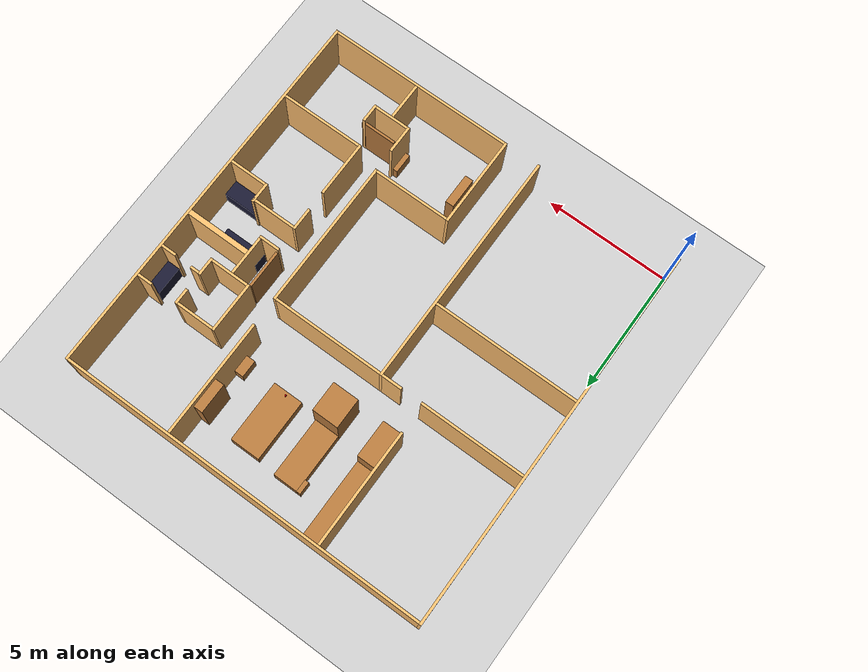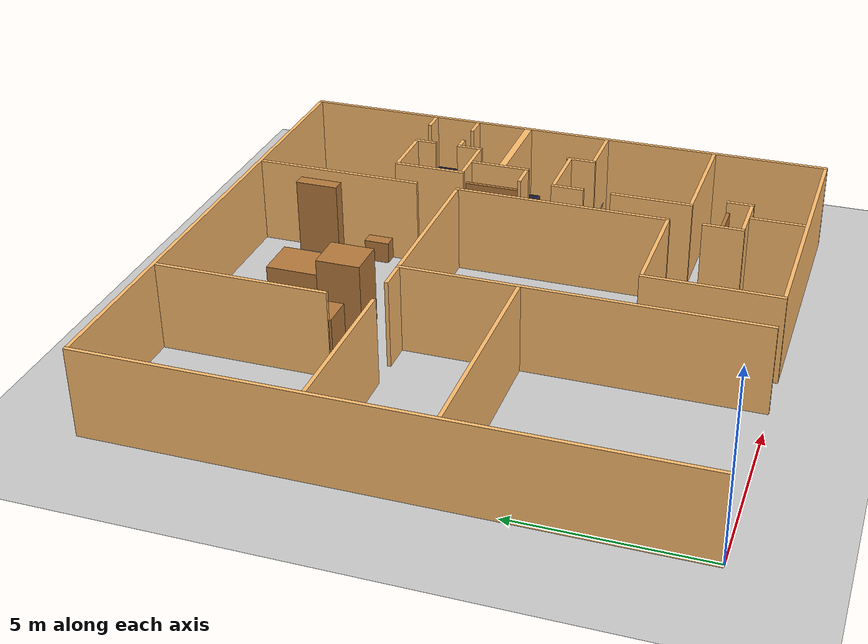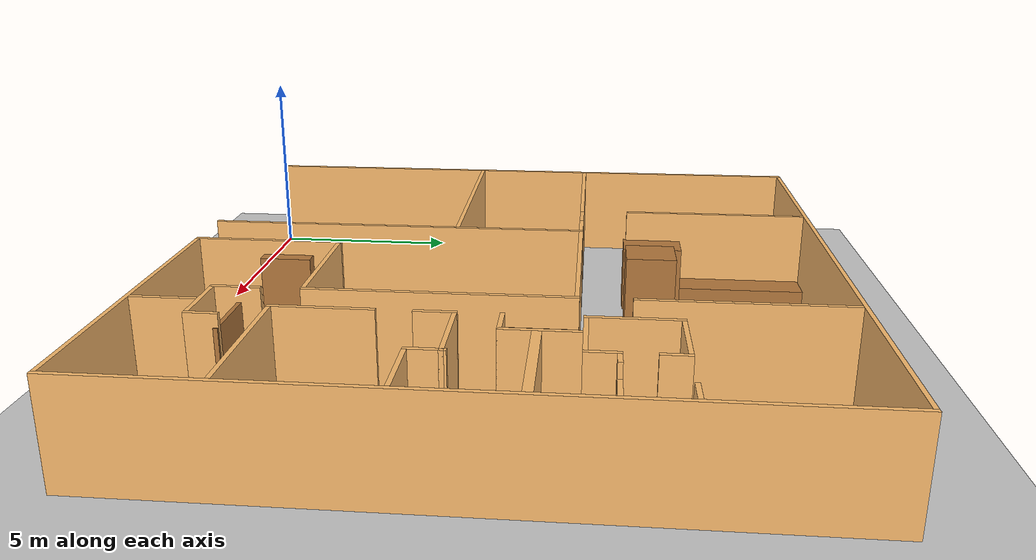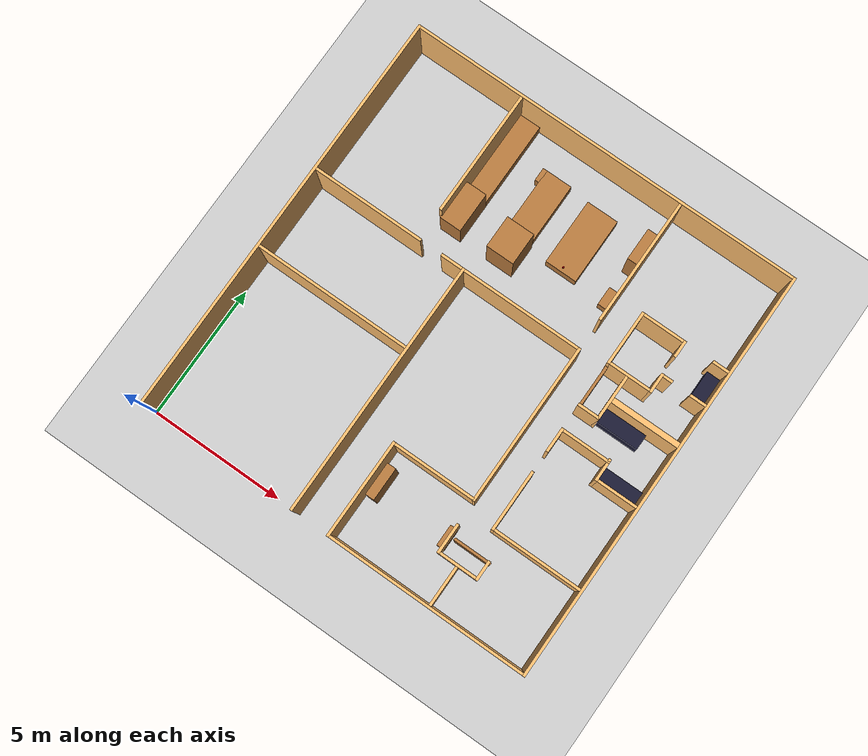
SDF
<?xml version="1.0" ?>
<sdf version="1.8">
  <world name="can_challenge">
    <physics name="1ms" type="ignored">
      <max_step_size>0.001</max_step_size>
      <real_time_factor>1.0</real_time_factor>
    </physics>
    <plugin filename="gz-sim-physics-system" name="gz::sim::systems::Physics">
    </plugin>
    <plugin filename="gz-sim-user-commands-system" name="gz::sim::systems::UserCommands">
    </plugin>
    <plugin filename="gz-sim-scene-broadcaster-system" name="gz::sim::systems::SceneBroadcaster">
    </plugin>
    <plugin filename="gz-sim-sensors-system" name="gz::sim::systems::Sensors">
      <render_engine>ogre2</render_engine>
    </plugin>

    <light type="directional" name="sun">
      <cast_shadows>true</cast_shadows>
      <pose>0 0 10 0 0 0</pose>
      <diffuse>0.8 0.8 0.8 1</diffuse>
      <specular>0.2 0.2 0.2 1</specular>
      <attenuation>
        <range>1000</range>
        <constant>0.9</constant>
        <linear>0.01</linear>
        <quadratic>0.001</quadratic>
      </attenuation>
      <direction>-0.5 0.1 -0.9</direction>
    </light>

    <model name="ground_plane">
      <static>true</static>
      <link name="link">
        <collision name="collision">
          <geometry>
            <plane>
              <normal>0 0 1</normal>
            </plane>
          </geometry>
        </collision>
        <visual name="visual">
          <geometry>
            <plane>
              <normal>0 0 1</normal>
              <size>100 100</size>
            </plane>
          </geometry>
          <material>
            <ambient>0.8 0.8 0.8 1</ambient>
            <diffuse>0.8 0.8 0.8 1</diffuse>
            <specular>0.8 0.8 0.8 1</specular>
          </material>
        </visual>
      </link>
    </model>

    <model name="robot_home">
      <static>true</static>
      <link name="kitchen_lower_cabinet">
        <pose> 4.5298 13.7 0.3048 0 0 0</pose>
        <visual name="visual">
          <geometry>
            <box>
              <size>0.83 3.2 0.6096</size>
            </box>
          </geometry>
           <material>
            <ambient>0.45 0.3 0.15 1</ambient>
            <diffuse>0.72 0.48 0.24 1</diffuse>
            <specular>0.15 0.15 0.15 1</specular>
            <emissive>0 0 0 1</emissive>
            <shininess>30</shininess>
          </material>
        </visual>
        <collision name="collision">
          <geometry>
            <box>
              <size>0.83 3.2 0.6096</size>
            </box>
          </geometry>
        </collision>
      </link>

      <link name="kitchen_pantry">
        <pose> 4.5298 11.35 0.6 0 0 0</pose>
        <visual name="visual">
          <geometry>
            <box>
              <size>0.83 1.5 2.13</size>
            </box>
          </geometry>
           <material>
            <ambient>0.45 0.3 0.15 1</ambient>
            <diffuse>0.72 0.48 0.24 1</diffuse>
            <specular>0.15 0.15 0.15 1</specular>
            <emissive>0 0 0 1</emissive>
            <shininess>30</shininess>
          </material>
        </visual>
        <collision name="collision">
          <geometry>
            <box>
              <size>0.83 1.5 2.13</size>
            </box>
          </geometry>
        </collision>
      </link>

      <link name="refrigerator">
        <pose> 6.525 11.2 1.065 0 0 0</pose>
        <visual name="visual">
          <geometry>
            <box>
              <size>1.05 1.2 2.13</size>
            </box>
          </geometry>
           <material>
            <ambient>0.45 0.3 0.15 1</ambient>
            <diffuse>0.72 0.48 0.24 1</diffuse>
            <specular>0.15 0.15 0.15 1</specular>
            <emissive>0 0 0 1</emissive>
            <shininess>30</shininess>
          </material>
        </visual>
        <collision name="collision">
          <geometry>
            <box>
              <size>1.05 1.2 2.13</size>
            </box>
          </geometry>
        </collision>
      </link>

      <link name="peninsula">
        <pose> 6.5 13.0 0.3048 0 0 0</pose>
        <visual name="visual">
          <geometry>
            <box>
              <size>1.0 2.4 0.6096</size>
            </box>
          </geometry>
           <material>
            <ambient>0.45 0.3 0.15 1</ambient>
            <diffuse>0.72 0.48 0.24 1</diffuse>
            <specular>0.15 0.15 0.15 1</specular>
            <emissive>0 0 0 1</emissive>
            <shininess>30</shininess>
          </material>
        </visual>
        <collision name="collision">
          <geometry>
            <box>
              <size>1.05 2.4 0.6096</size>
            </box>
          </geometry>
        </collision>
      </link>

      <link name="garbage_can">
        <pose> 5.935 13.95 0.3048 0 0 0</pose>
        <visual name="visual">
          <geometry>
            <box>
              <size>0.17 0.5 0.6096</size>
            </box>
          </geometry>
           <material>
            <ambient>0.45 0.3 0.15 1</ambient>
            <diffuse>0.72 0.48 0.24 1</diffuse>
            <specular>0.15 0.15 0.15 1</specular>
            <emissive>0 0 0 1</emissive>
            <shininess>30</shininess>
          </material>
        </visual>
        <collision name="collision">
          <geometry>
            <box>
              <size>0.17 0.5 0.6096</size>
            </box>
          </geometry>
        </collision>
      </link>

      <link name="kitchen_table">
        <pose> 8.355 12.85 0.3048 0 0 0</pose>
        <visual name="visual">
          <geometry>
            <box>
              <size>1.21 2.5 0.6096</size>
            </box>
          </geometry>
           <material>
            <ambient>0.45 0.3 0.15 1</ambient>
            <diffuse>0.72 0.48 0.24 1</diffuse>
            <specular>0.15 0.15 0.15 1</specular>
            <emissive>0 0 0 1</emissive>
            <shininess>30</shininess>
          </material>
        </visual>
        <collision name="collision">
          <geometry>
            <box>
              <size>1.21 2.5 0.6096</size>
            </box>
          </geometry>
        </collision>
      </link>

      <link name="ikea_pantry">
        <pose>10.2  13.5 1.065 0 0 0</pose>
        <visual name="visual">
          <geometry>
            <box>
              <size>0.4 1.2 2.13</size>
            </box>
          </geometry>
           <material>
            <ambient>0.45 0.3 0.15 1</ambient>
            <diffuse>0.72 0.48 0.24 1</diffuse>
            <specular>0.15 0.15 0.15 1</specular>
            <emissive>0 0 0 1</emissive>
            <shininess>30</shininess>
          </material>
        </visual>
        <collision name="collision">
          <geometry>
            <box>
              <size>0.4 1.2 2.13</size>
            </box>
          </geometry>
        </collision>
      </link>

      <link name="ikea_boxes">
        <pose> 10.2 11.75 0.3048 0 0 0</pose>
        <visual name="visual">
          <geometry>
            <box>
              <size>0.4 0.7 0.6096</size>
            </box>
          </geometry>
           <material>
            <ambient>0.45 0.3 0.15 1</ambient>
            <diffuse>0.72 0.48 0.24 1</diffuse>
            <specular>0.15 0.15 0.15 1</specular>
            <emissive>0 0 0 1</emissive>
            <shininess>30</shininess>
          </material>
        </visual>
        <collision name="collision">
          <geometry>
            <box>
              <size>0.4 0.7 0.6096</size>
            </box>
          </geometry>
        </collision>
      </link>

      <link name="hall_storage_door_east">
        <pose> 11.45 8.81 1.065 0 0 0</pose>
        <visual name="visual">
          <geometry>
            <box>
              <size>0.1 1.52 2.13</size>
            </box>
          </geometry>
           <material>
            <ambient>0.45 0.3 0.15 1</ambient>
            <diffuse>0.72 0.48 0.24 1</diffuse>
            <specular>0.15 0.15 0.15 1</specular>
            <emissive>0 0 0 1</emissive>
            <shininess>30</shininess>
          </material>
        </visual>
        <collision name="collision">
          <geometry>
            <box>
              <size>0.1 1.52 2.13</size>
            </box>
          </geometry>
        </collision>
      </link>

      <link name="computer_bookcase_north">
        <pose>7.635 2.38 1.065 0 0 0</pose>
        <visual name="visual">
          <geometry>
            <box>
              <size>0.33 1.22 2.13</size>
            </box>
          </geometry>
           <material>
            <ambient>0.45 0.3 0.15 1</ambient>
            <diffuse>0.72 0.48 0.24 1</diffuse>
            <specular>0.15 0.15 0.15 1</specular>
            <emissive>0 0 0 1</emissive>
            <shininess>30</shininess>
          </material>
        </visual>
        <collision name="collision">
          <geometry>
            <box>
              <size>0.33 1.22 2.13</size>
            </box>
          </geometry>
        </collision>
      </link>

      <link name="computer_table_south">
        <pose> 10.35 2.18 0.3048 0 0 0</pose>
        <visual name="visual">
          <geometry>
            <box>
              <size>0.3 0.8 0.6096</size>
            </box>
          </geometry>
           <material>
            <ambient>0.45 0.3 0.15 1</ambient>
            <diffuse>0.72 0.48 0.24 1</diffuse>
            <specular>0.15 0.15 0.15 1</specular>
            <emissive>0 0 0 1</emissive>
            <shininess>30</shininess>
          </material>
        </visual>
        <collision name="collision">
          <geometry>
            <box>
              <size>0.3 0.8 0.6096</size>
            </box>
          </geometry>
        </collision>
      </link>

      <link name="hall_storage_door_west">
        <pose> 11.3 2.25 1.065 0 0 0</pose>
        <visual name="visual">
          <geometry>
            <box>
              <size>1.4 0.1 2.13</size>
            </box>
          </geometry>
           <material>
            <ambient>0.45 0.3 0.15 1</ambient>
            <diffuse>0.72 0.48 0.24 1</diffuse>
            <specular>0.15 0.15 0.15 1</specular>
            <emissive>0 0 0 1</emissive>
            <shininess>30</shininess>
          </material>
        </visual>
        <collision name="collision">
          <geometry>
            <box>
              <size>1.55 0.1 2.13</size>
            </box>
          </geometry>
        </collision>
      </link>

      <link name="north_wall">
        <pose> -0.0508 7.7089 1.2191999999999998 0 0 0</pose>
        <visual name="visual">
          <geometry>
            <box>
              <size>0.1016 15.4178 2.4383999999999997</size>
            </box>
          </geometry>
          <material>
            <ambient>1.0 0.7451 0.4353 1</ambient>
            <diffuse>1.0 0.7451 0.4353 1</diffuse>
            <specular>1 1 1 1</specular>
          </material>
        </visual>
        <collision name="collision">
          <geometry>
            <box>
              <size>0.1016 15.4178 2.4383999999999997</size>
            </box>
          </geometry>
        </collision>
      </link>
      <link name="south_wall">
        <pose> 14.8082 7.7089 1.2191999999999998 0 0 0</pose>
        <visual name="visual">
          <geometry>
            <box>
              <size>0.1016 15.4178 2.4383999999999997</size>
            </box>
          </geometry>
          <material>
            <ambient>1.0 0.7451 0.4353 1</ambient>
            <diffuse>1.0 0.7451 0.4353 1</diffuse>
            <specular>1 1 1 1</specular>
          </material>
        </visual>
        <collision name="collision">
          <geometry>
            <box>
              <size>0.1016 15.4178 2.4383999999999997</size>
            </box>
          </geometry>
        </collision>
      </link>
      <link name="east_wall">
        <pose> 7.378699999999999 15.367 1.2191999999999998 0 0 0</pose>
        <visual name="visual">
          <geometry>
            <box>
              <size>14.757399999999999 0.1016 2.4383999999999997</size>
            </box>
          </geometry>
          <material>
            <ambient>1.0 0.7451 0.4353 1</ambient>
            <diffuse>1.0 0.7451 0.4353 1</diffuse>
            <specular>1 1 1 1</specular>
          </material>
        </visual>
        <collision name="collision">
          <geometry>
            <box>
              <size>14.757399999999999 0.1016 2.4383999999999997</size>
            </box>
          </geometry>
        </collision>
      </link>
      <link name="north_atrium_wall">
        <pose> 5.867399999999999 4.7625 1.2191999999999998 0 0 0</pose>
        <visual name="visual">
          <geometry>
            <box>
              <size>0.1016 9.525 2.4383999999999997</size>
            </box>
          </geometry>
          <material>
            <ambient>1.0 0.7451 0.4353 1</ambient>
            <diffuse>1.0 0.7451 0.4353 1</diffuse>
            <specular>1 1 1 1</specular>
          </material>
        </visual>
        <collision name="collision">
          <geometry>
            <box>
              <size>0.1016 9.525 2.4383999999999997</size>
            </box>
          </geometry>
        </collision>
      </link>
      <link name="hobby_east_wall_1">
        <pose> 2.0955 9.4742 1.2191999999999998 0 0 0</pose>
        <visual name="visual">
          <geometry>
            <box>
              <size>4.191 0.1016 2.4383999999999997</size>
            </box>
          </geometry>
          <material>
            <ambient>1.0 0.7451 0.4353 1</ambient>
            <diffuse>1.0 0.7451 0.4353 1</diffuse>
            <specular>1 1 1 1</specular>
          </material>
        </visual>
        <collision name="collision">
          <geometry>
            <box>
              <size>4.191 0.1016 2.4383999999999997</size>
            </box>
          </geometry>
        </collision>
      </link>
      <link name="hobby_east_wall_2">
        <pose> 5.4102 9.4742 1.2191999999999998 0 0 0</pose>
        <visual name="visual">
          <geometry>
            <box>
              <size>0.8128 0.1016 2.4383999999999997</size>
            </box>
          </geometry>
          <material>
            <ambient>1.0 0.7451 0.4353 1</ambient>
            <diffuse>1.0 0.7451 0.4353 1</diffuse>
            <specular>1 1 1 1</specular>
          </material>
        </visual>
        <collision name="collision">
          <geometry>
            <box>
              <size>0.8128 0.1016 2.4383999999999997</size>
            </box>
          </geometry>
        </collision>
      </link>
      <link name="hobby_west_wall">
        <pose> 2.9082999999999997 6.324599999999999 1.2191999999999998 0 0 0</pose>
        <visual name="visual">
          <geometry>
            <box>
              <size>5.816599999999999 0.1016 2.4383999999999997</size>
            </box>
          </geometry>
          <material>
            <ambient>1.0 0.7451 0.4353 1</ambient>
            <diffuse>1.0 0.7451 0.4353 1</diffuse>
            <specular>1 1 1 1</specular>
          </material>
        </visual>
        <collision name="collision">
          <geometry>
            <box>
              <size>5.816599999999999 0.1016 2.4383999999999997</size>
            </box>
          </geometry>
        </collision>
      </link>
      <link name="kitchen_lr_divider">
        <pose> 4.1148 12.992099999999999 1.2191999999999998 0 0 0</pose>
        <visual name="visual">
          <geometry>
            <box>
              <size>0.1016 4.6482 2.4383999999999997</size>
            </box>
          </geometry>
          <material>
            <ambient>1.0 0.7451 0.4353 1</ambient>
            <diffuse>1.0 0.7451 0.4353 1</diffuse>
            <specular>1 1 1 1</specular>
          </material>
        </visual>
        <collision name="collision">
          <geometry>
            <box>
              <size>0.1016 4.6482 2.4383999999999997</size>
            </box>
          </geometry>
        </collision>
      </link>
      <link name="master_br_kitchen_divider">
        <pose> 10.414 12.9794 1.2191999999999998 0 0 0</pose>
        <visual name="visual">
          <geometry>
            <box>
              <size>0.1016 4.6735999999999995 2.4383999999999997</size>
            </box>
          </geometry>
          <material>
            <ambient>1.0 0.7451 0.4353 1</ambient>
            <diffuse>1.0 0.7451 0.4353 1</diffuse>
            <specular>1 1 1 1</specular>
          </material>
        </visual>
        <collision name="collision">
          <geometry>
            <box>
              <size>0.1016 4.6735999999999995 2.4383999999999997</size>
            </box>
          </geometry>
        </collision>
      </link>
      <link name="master_br_closet_ew_long">
        <pose> 11.43 10.6426 1.2191999999999998 0 0 0</pose>
        <visual name="visual">
          <geometry>
            <box>
              <size>0.1016 2.032 2.4383999999999997</size>
            </box>
          </geometry>
          <material>
            <ambient>1.0 0.7451 0.4353 1</ambient>
            <diffuse>1.0 0.7451 0.4353 1</diffuse>
            <specular>1 1 1 1</specular>
          </material>
        </visual>
        <collision name="collision">
          <geometry>
            <box>
              <size>0.1016 2.032 2.4383999999999997</size>
            </box>
          </geometry>
        </collision>
      </link>
      <link name="master_br_closet_ns_east">
        <pose> 12.2428 11.607800000000001 1.2191999999999998 0 0 0</pose>
        <visual name="visual">
          <geometry>
            <box>
              <size>1.524 0.1016 2.4383999999999997</size>
            </box>
          </geometry>
          <material>
            <ambient>1.0 0.7451 0.4353 1</ambient>
            <diffuse>1.0 0.7451 0.4353 1</diffuse>
            <specular>1 1 1 1</specular>
          </material>
        </visual>
        <collision name="collision">
          <geometry>
            <box>
              <size>1.524 0.1016 2.4383999999999997</size>
            </box>
          </geometry>
        </collision>
      </link>
      <link name="master_br_closet_ns_west">
        <pose> 12.2428 9.6774 1.2191999999999998 0 0 0</pose>
        <visual name="visual">
          <geometry>
            <box>
              <size>1.524 0.1016 2.4383999999999997</size>
            </box>
          </geometry>
          <material>
            <ambient>1.0 0.7451 0.4353 1</ambient>
            <diffuse>1.0 0.7451 0.4353 1</diffuse>
            <specular>1 1 1 1</specular>
          </material>
        </visual>
        <collision name="collision">
          <geometry>
            <box>
              <size>1.524 0.1016 2.4383999999999997</size>
            </box>
          </geometry>
        </collision>
      </link>
      <link name="master_br_closet_ew_short_east">
        <pose> 13.0556 11.3411 1.2191999999999998 0 0 0</pose>
        <visual name="visual">
          <geometry>
            <box>
              <size>0.1016 0.635 2.4383999999999997</size>
            </box>
          </geometry>
          <material>
            <ambient>1.0 0.7451 0.4353 1</ambient>
            <diffuse>1.0 0.7451 0.4353 1</diffuse>
            <specular>1 1 1 1</specular>
          </material>
        </visual>
        <collision name="collision">
          <geometry>
            <box>
              <size>0.1016 0.635 2.4383999999999997</size>
            </box>
          </geometry>
        </collision>
      </link>
      <link name="master_br_closet_ew_short_west">
        <pose> 13.0556 9.9949 1.2191999999999998 0 0 0</pose>
        <visual name="visual">
          <geometry>
            <box>
              <size>0.1016 0.7365999999999999 2.4383999999999997</size>
            </box>
          </geometry>
          <material>
            <ambient>1.0 0.7451 0.4353 1</ambient>
            <diffuse>1.0 0.7451 0.4353 1</diffuse>
            <specular>1 1 1 1</specular>
          </material>
        </visual>
        <collision name="collision">
          <geometry>
            <box>
              <size>0.1016 0.7365999999999999 2.4383999999999997</size>
            </box>
          </geometry>
        </collision>
      </link>
      <link name="master_br_closet_ns_west_to_door">
        <pose> 13.284199999999998 10.3124 1.2191999999999998 0 0 0</pose>
        <visual name="visual">
          <geometry>
            <box>
              <size>0.35559999999999997 0.1016 2.4383999999999997</size>
            </box>
          </geometry>
          <material>
            <ambient>1.0 0.7451 0.4353 1</ambient>
            <diffuse>1.0 0.7451 0.4353 1</diffuse>
            <specular>1 1 1 1</specular>
          </material>
        </visual>
        <collision name="collision">
          <geometry>
            <box>
              <size>0.35559999999999997 0.1016 2.4383999999999997</size>
            </box>
          </geometry>
        </collision>
      </link>
      <link name="master_br_vanity_wall_east">
        <pose> 14.4526 11.607800000000001 1.2191999999999998 0 0 0</pose>
        <visual name="visual">
          <geometry>
            <box>
              <size>0.6095999999999999 0.1016 2.4383999999999997</size>
            </box>
          </geometry>
          <material>
            <ambient>1.0 0.7451 0.4353 1</ambient>
            <diffuse>1.0 0.7451 0.4353 1</diffuse>
            <specular>1 1 1 1</specular>
          </material>
        </visual>
        <collision name="collision">
          <geometry>
            <box>
              <size>0.6095999999999999 0.1016 2.4383999999999997</size>
            </box>
          </geometry>
        </collision>
      </link>
      <link name="master_br_vanity_wall_west">
        <pose> 14.4526 10.287 1.2191999999999998 0 0 0</pose>
        <visual name="visual">
          <geometry>
            <box>
              <size>0.6095999999999999 0.1016 2.4383999999999997</size>
            </box>
          </geometry>
          <material>
            <ambient>1.0 0.7451 0.4353 1</ambient>
            <diffuse>1.0 0.7451 0.4353 1</diffuse>
            <specular>1 1 1 1</specular>
          </material>
        </visual>
        <collision name="collision">
          <geometry>
            <box>
              <size>0.6095999999999999 0.1016 2.4383999999999997</size>
            </box>
          </geometry>
        </collision>
      </link>
      <link name="master_br_vanity">
        <pose>
          14.5034
          10.9474
          0.4064
          0
          0
          0
        </pose>
        <collision name="collision">
          <geometry>
            <box>
              <size>
                0.508
                1.2191999999999998
                0.8128</size>
            </box>
          </geometry>
        </collision>
        <visual name="visual">
          <cast_shadows>false</cast_shadows>
          <geometry>
            <box>
              <size>0.508
                1.2191999999999998
                0.8128</size>
            </box>
          </geometry>
          <material>
            <ambient>1.0 0.0 0.0 1</ambient>
            <diffuse>0.1 0.1 0.2 1</diffuse>
            <specular>0 0 0 0</specular>
            <emissive>0 0 0 1</emissive>
          </material>
        </visual>
      </link>
      <link name="master_br_guest_shower_divider">
        <pose> 13.4874 8.737599999999999 1.2191999999999998 0 0 0</pose>
        <visual name="visual">
          <geometry>
            <box>
              <size>2.54 0.2032 2.4383999999999997</size>
            </box>
          </geometry>
          <material>
            <ambient>1.0 0.7451 0.4353 1</ambient>
            <diffuse>1.0 0.7451 0.4353 1</diffuse>
            <specular>1 1 1 1</specular>
          </material>
        </visual>
        <collision name="collision">
          <geometry>
            <box>
              <size>2.54 0.2032 2.4383999999999997</size>
            </box>
          </geometry>
        </collision>
      </link>
      <link name="guest_bath_north_wall">
        <pose> 12.1666 8.7884 1.2191999999999998 0 0 0</pose>
        <visual name="visual">
          <geometry>
            <box>
              <size>0.1016 1.6764 2.4383999999999997</size>
            </box>
          </geometry>
          <material>
            <ambient>1.0 0.7451 0.4353 1</ambient>
            <diffuse>1.0 0.7451 0.4353 1</diffuse>
            <specular>1 1 1 1</specular>
          </material>
        </visual>
        <collision name="collision">
          <geometry>
            <box>
              <size>0.1016 1.6764 2.4383999999999997</size>
            </box>
          </geometry>
        </collision>
      </link>
      <link name="guest_bath_closet_east_wall">
        <pose> 11.7983 8.001 1.2191999999999998 0 0 0</pose>
        <visual name="visual">
          <geometry>
            <box>
              <size>0.8382 0.1016 2.4383999999999997</size>
            </box>
          </geometry>
          <material>
            <ambient>1.0 0.7451 0.4353 1</ambient>
            <diffuse>1.0 0.7451 0.4353 1</diffuse>
            <specular>1 1 1 1</specular>
          </material>
        </visual>
        <collision name="collision">
          <geometry>
            <box>
              <size>0.8382 0.1016 2.4383999999999997</size>
            </box>
          </geometry>
        </collision>
      </link>
      <link name="guest_bath_west_wall1">
        <pose> 12.37615 7.035799999999999 1.2191999999999998 0 0 0</pose>
        <visual name="visual">
          <geometry>
            <box>
              <size>1.7907 0.1016 2.4383999999999997</size>
            </box>
          </geometry>
          <material>
            <ambient>1.0 0.7451 0.4353 1</ambient>
            <diffuse>1.0 0.7451 0.4353 1</diffuse>
            <specular>1 1 1 1</specular>
          </material>
        </visual>
        <collision name="collision">
          <geometry>
            <box>
              <size>1.7907 0.1016 2.4383999999999997</size>
            </box>
          </geometry>
        </collision>
      </link>
      <link name="guest_bath_west_wall2">
        <pose> 14.01445 6.35 1.2191999999999998 0 0 0</pose>
        <visual name="visual">
          <geometry>
            <box>
              <size>1.4859 0.1016 2.4383999999999997</size>
            </box>
          </geometry>
          <material>
            <ambient>1.0 0.7451 0.4353 1</ambient>
            <diffuse>1.0 0.7451 0.4353 1</diffuse>
            <specular>1 1 1 1</specular>
          </material>
        </visual>
        <collision name="collision">
          <geometry>
            <box>
              <size>1.4859 0.1016 2.4383999999999997</size>
            </box>
          </geometry>
        </collision>
      </link>
      <link name="guest_bathtub_end_wall">
        <pose> 13.2207 6.7183 1.2191999999999998 0 0 0</pose>
        <visual name="visual">
          <geometry>
            <box>
              <size>0.1016 0.8382 2.4383999999999997</size>
            </box>
          </geometry>
          <material>
            <ambient>1.0 0.7451 0.4353 1</ambient>
            <diffuse>1.0 0.7451 0.4353 1</diffuse>
            <specular>1 1 1 1</specular>
          </material>
        </visual>
        <collision name="collision">
          <geometry>
            <box>
              <size>0.1016 0.8382 2.4383999999999997</size>
            </box>
          </geometry>
        </collision>
      </link>
      <link name="guest_bath_vanity">
        <pose>
          12.953999999999999
          8.3566
          0.4064
          0
          0
          0
        </pose>
        <collision name="collision">
          <geometry>
            <box>
              <size>
                1.6764
                0.5588
                0.8128</size>
            </box>
          </geometry>
        </collision>
        <visual name="visual">
          <cast_shadows>false</cast_shadows>
          <geometry>
            <box>
              <size>1.6764
                0.5588
                0.8128</size>
            </box>
          </geometry>
          <material>
            <ambient>0.0 0.0 0. 1</ambient>
            <diffuse>0.1 0.1 0.2 1</diffuse>
            <specular>0 0 0 0</specular>
            <emissive>0 0 0 1</emissive>
          </material>
        </visual>
      </link>
      <link name="guest_bathtub">
        <pose>
          14.01445
          6.6674999999999995
          0.30479999999999996
          0
          0
          0
        </pose>
        <collision name="collision">
          <geometry>
            <box>
              <size>
                1.4859
                0.7365999999999999
                0.6095999999999999</size>
            </box>
          </geometry>
        </collision>
        <visual name="visual">
          <cast_shadows>false</cast_shadows>
          <geometry>
            <box>
              <size>1.4859
                0.7365999999999999
                0.6095999999999999</size>
            </box>
          </geometry>
          <material>
            <ambient>0.9 0.9 0.9 1</ambient>
            <diffuse>0.1 0.1 0.2 1</diffuse>
            <specular>0 0 0 0</specular>
            <emissive>0 0 0 1</emissive>
          </material>
        </visual>
      </link>
      <link name="music_west_wall">
        <pose> 13.1191 3.2004 1.2191999999999998 0 0 0</pose>
        <visual name="visual">
          <geometry>
            <box>
              <size>3.2765999999999997 0.1016 2.4383999999999997</size>
            </box>
          </geometry>
          <material>
            <ambient>1.0 0.7451 0.4353 1</ambient>
            <diffuse>1.0 0.7451 0.4353 1</diffuse>
            <specular>1 1 1 1</specular>
          </material>
        </visual>
        <collision name="collision">
          <geometry>
            <box>
              <size>3.2765999999999997 0.1016 2.4383999999999997</size>
            </box>
          </geometry>
        </collision>
      </link>
      <link name="music_north_ew_1">
        <pose> 11.43 6.6294 1.2191999999999998 0 0 0</pose>
        <visual name="visual">
          <geometry>
            <box>
              <size>0.1016 0.9144 2.4383999999999997</size>
            </box>
          </geometry>
          <material>
            <ambient>1.0 0.7451 0.4353 1</ambient>
            <diffuse>1.0 0.7451 0.4353 1</diffuse>
            <specular>1 1 1 1</specular>
          </material>
        </visual>
        <collision name="collision">
          <geometry>
            <box>
              <size>0.1016 0.9144 2.4383999999999997</size>
            </box>
          </geometry>
        </collision>
      </link>
      <link name="music_north_ew_2">
        <pose> 11.43 4.2799 1.2191999999999998 0 0 0</pose>
        <visual name="visual">
          <geometry>
            <box>
              <size>0.1016 2.2605999999999997 2.4383999999999997</size>
            </box>
          </geometry>
          <material>
            <ambient>1.0 0.7451 0.4353 1</ambient>
            <diffuse>1.0 0.7451 0.4353 1</diffuse>
            <specular>1 1 1 1</specular>
          </material>
        </visual>
        <collision name="collision">
          <geometry>
            <box>
              <size>0.1016 2.2605999999999997 2.4383999999999997</size>
            </box>
          </geometry>
        </collision>
      </link>
      <link name="cat_computer_west_wall">
        <pose> 11.049 0.0508 1.2191999999999998 0 0 0</pose>
        <visual name="visual">
          <geometry>
            <box>
              <size>7.416799999999999 0.1016 2.4383999999999997</size>
            </box>
          </geometry>
          <material>
            <ambient>1.0 0.7451 0.4353 1</ambient>
            <diffuse>1.0 0.7451 0.4353 1</diffuse>
            <specular>1 1 1 1</specular>
          </material>
        </visual>
        <collision name="collision">
          <geometry>
            <box>
              <size>7.416799999999999 0.1016 2.4383999999999997</size>
            </box>
          </geometry>
        </collision>
      </link>
      <link name="cat_north_ns">
        <pose> 11.176 0.8382 1.2191999999999998 0 0 0</pose>
        <visual name="visual">
          <geometry>
            <box>
              <size>0.1016 1.4731999999999998 2.4383999999999997</size>
            </box>
          </geometry>
          <material>
            <ambient>1.0 0.7451 0.4353 1</ambient>
            <diffuse>1.0 0.7451 0.4353 1</diffuse>
            <specular>1 1 1 1</specular>
          </material>
        </visual>
        <collision name="collision">
          <geometry>
            <box>
              <size>0.1016 1.4731999999999998 2.4383999999999997</size>
            </box>
          </geometry>
        </collision>
      </link>
      <link name="closet_west_hall_back">
        <pose> 11.176 1.6256 1.2191999999999998 0 0 0</pose>
        <visual name="visual">
          <geometry>
            <box>
              <size>1.3716 0.1016 2.4383999999999997</size>
            </box>
          </geometry>
          <material>
            <ambient>1.0 0.7451 0.4353 1</ambient>
            <diffuse>1.0 0.7451 0.4353 1</diffuse>
            <specular>1 1 1 1</specular>
          </material>
        </visual>
        <collision name="collision">
          <geometry>
            <box>
              <size>1.3716 0.1016 2.4383999999999997</size>
            </box>
          </geometry>
        </collision>
      </link>
      <link name="closet_east_wall_north">
        <pose> 11.9126 1.9430999999999998 1.2191999999999998 0 0 0</pose>
        <visual name="visual">
          <geometry>
            <box>
              <size>0.1016 0.7365999999999999 2.4383999999999997</size>
            </box>
          </geometry>
          <material>
            <ambient>1.0 0.7451 0.4353 1</ambient>
            <diffuse>1.0 0.7451 0.4353 1</diffuse>
            <specular>1 1 1 1</specular>
          </material>
        </visual>
        <collision name="collision">
          <geometry>
            <box>
              <size>0.1016 0.7365999999999999 2.4383999999999997</size>
            </box>
          </geometry>
        </collision>
      </link>
      <link name="closet_west_hall_north">
        <pose> 10.439400000000001 2.1336 1.2191999999999998 0 0 0</pose>
        <visual name="visual">
          <geometry>
            <box>
              <size>0.1016 1.1176 2.4383999999999997</size>
            </box>
          </geometry>
          <material>
            <ambient>1.0 0.7451 0.4353 1</ambient>
            <diffuse>1.0 0.7451 0.4353 1</diffuse>
            <specular>1 1 1 1</specular>
          </material>
        </visual>
        <collision name="collision">
          <geometry>
            <box>
              <size>0.1016 1.1176 2.4383999999999997</size>
            </box>
          </geometry>
        </collision>
      </link>
      <link name="computer_north">
        <pose> 7.2898 1.8288 1.2191999999999998 0 0 0</pose>
        <visual name="visual">
          <geometry>
            <box>
              <size>0.1016 3.6576 2.4383999999999997</size>
            </box>
          </geometry>
          <material>
            <ambient>1.0 0.7451 0.4353 1</ambient>
            <diffuse>1.0 0.7451 0.4353 1</diffuse>
            <specular>1 1 1 1</specular>
          </material>
        </visual>
        <collision name="collision">
          <geometry>
            <box>
              <size>0.1016 3.6576 2.4383999999999997</size>
            </box>
          </geometry>
        </collision>
      </link>
      <link name="computer_east_wall">
        <pose> 8.8646 3.6068000000000002 1.2191999999999998 0 0 0</pose>
        <visual name="visual">
          <geometry>
            <box>
              <size>3.048 0.1016 2.4383999999999997</size>
            </box>
          </geometry>
          <material>
            <ambient>1.0 0.7451 0.4353 1</ambient>
            <diffuse>1.0 0.7451 0.4353 1</diffuse>
            <specular>1 1 1 1</specular>
          </material>
        </visual>
        <collision name="collision">
          <geometry>
            <box>
              <size>3.048 0.1016 2.4383999999999997</size>
            </box>
          </geometry>
        </collision>
      </link>
      <link name="long_hall_north">
        <pose> 10.414 6.5405 1.2191999999999998 0 0 0</pose>
        <visual name="visual">
          <geometry>
            <box>
              <size>0.1016 5.968999999999999 2.4383999999999997</size>
            </box>
          </geometry>
          <material>
            <ambient>1.0 0.7451 0.4353 1</ambient>
            <diffuse>1.0 0.7451 0.4353 1</diffuse>
            <specular>1 1 1 1</specular>
          </material>
        </visual>
        <collision name="collision">
          <geometry>
            <box>
              <size>0.1016 5.968999999999999 2.4383999999999997</size>
            </box>
          </geometry>
        </collision>
      </link>
      <link name="atrium_east_wall">
        <pose> 8.140699999999999 9.4742 1.2191999999999998 0 0 0</pose>
        <visual name="visual">
          <geometry>
            <box>
              <size>4.444999999999999 0.1016 2.4383999999999997</size>
            </box>
          </geometry>
          <material>
            <ambient>1.0 0.7451 0.4353 1</ambient>
            <diffuse>1.0 0.7451 0.4353 1</diffuse>
            <specular>1 1 1 1</specular>
          </material>
        </visual>
        <collision name="collision">
          <geometry>
            <box>
              <size>4.444999999999999 0.1016 2.4383999999999997</size>
            </box>
          </geometry>
        </collision>
      </link>
    </model>

    <!-- Coke can on kitchen table -->
    <model name="coke_can">
      <pose>8.355 11.7524 0.67095 0 0 0</pose>
      <link name="can_link">
        <inertial>
          <mass>0.368</mass>
          <inertia>
            <ixx>0.001</ixx>
            <ixy>0</ixy>
            <ixz>0</ixz>
            <iyy>0.001</iyy>
            <iyz>0</iyz>
            <izz>0.0005</izz>
          </inertia>
        </inertial>
        <collision name="collision">
          <geometry>
            <cylinder>
              <radius>0.033</radius>
              <length>0.1227</length>
            </cylinder>
          </geometry>
          <surface>
            <friction>
              <ode>
                <mu>3.0</mu>
                <mu2>3.0</mu2>
                <slip1>0.001</slip1>
                <slip2>0.001</slip2>
              </ode>
            </friction>
            <contact>
              <ode>
                <kp>200000.0</kp>
                <kd>1.0</kd>
              </ode>
            </contact>
          </surface>
        </collision>
        <visual name="visual">
          <geometry>
            <cylinder>
              <radius>0.033</radius>
              <length>0.1227</length>
            </cylinder>
          </geometry>
          <material>
            <ambient>0.8 0.0 0.0 1</ambient>
            <diffuse>0.8 0.0 0.0 1</diffuse>
            <specular>0.5 0.5 0.5 1</specular>
            <emissive>0 0 0 1</emissive>
          </material>
        </visual>
      </link>
    </model>

  </world>
</sdf>
